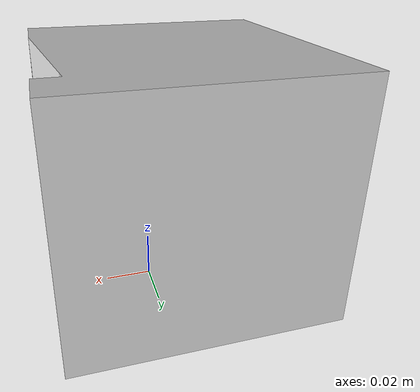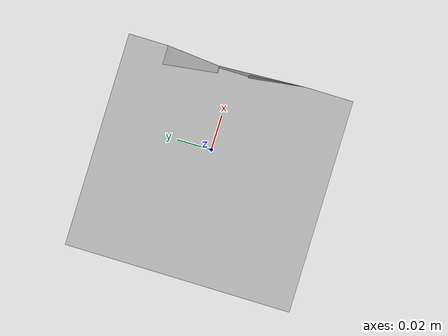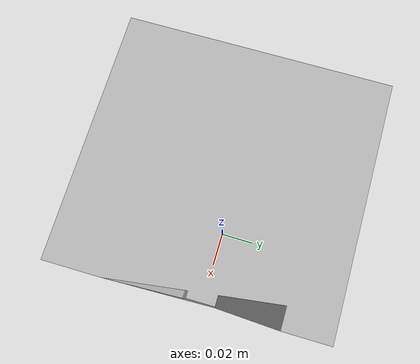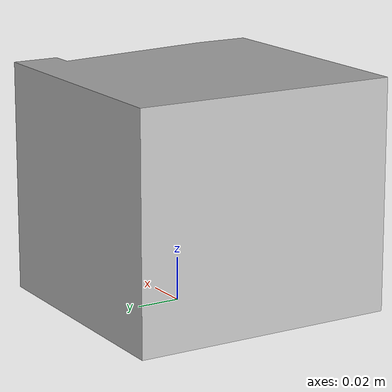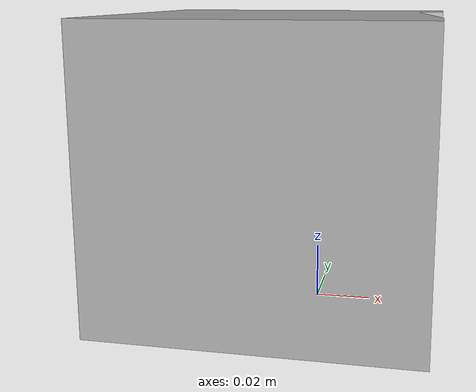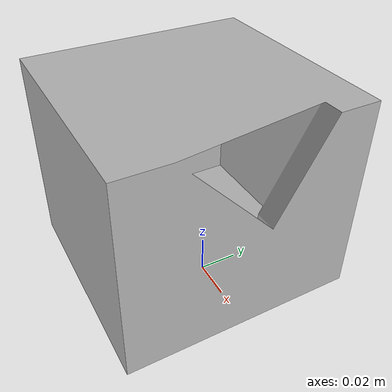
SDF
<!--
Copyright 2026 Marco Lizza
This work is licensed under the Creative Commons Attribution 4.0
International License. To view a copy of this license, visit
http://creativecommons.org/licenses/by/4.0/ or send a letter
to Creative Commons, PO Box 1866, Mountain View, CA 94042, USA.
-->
<?xml version="1.0" ?>
<sdf version="1.6">
  <model name="Base">
    <link name="link_0">
        <inertial>
        <mass>5000</mass>
      </inertial>
      <visual name="visual">
        <geometry>
          <mesh>
            <uri>meshes/cup_case.obj</uri>
          </mesh>
        </geometry>
      </visual>
      <collision name="collision_0">
        <geometry>
          <mesh>
            <uri>meshes/cup_case.obj</uri>
          </mesh>
        </geometry>
      </collision>
    </link>
  </model>
</sdf>
